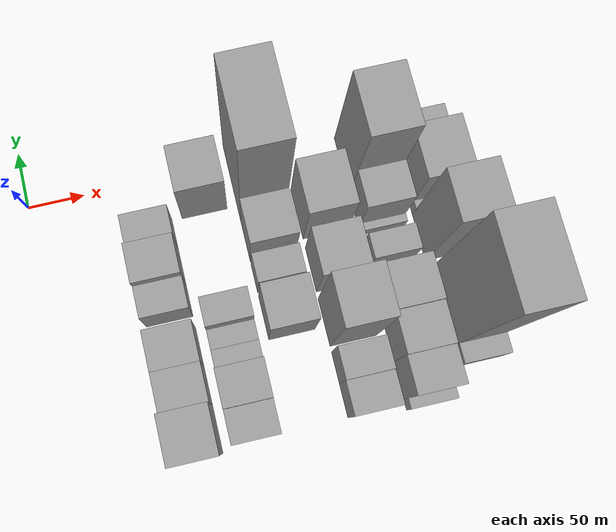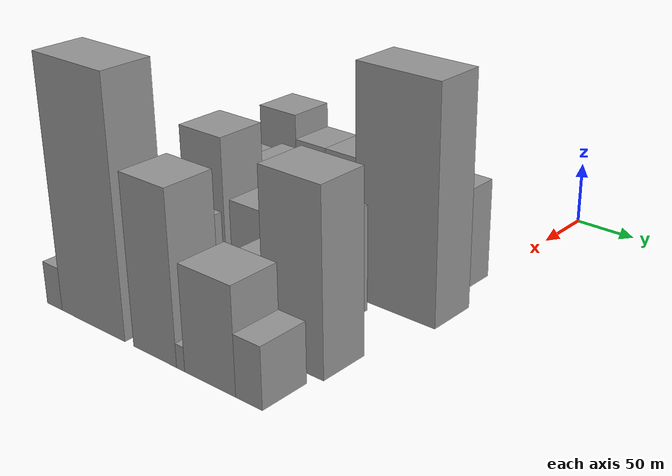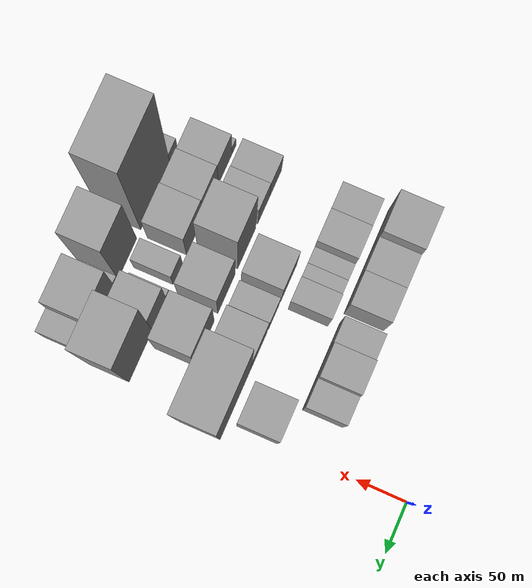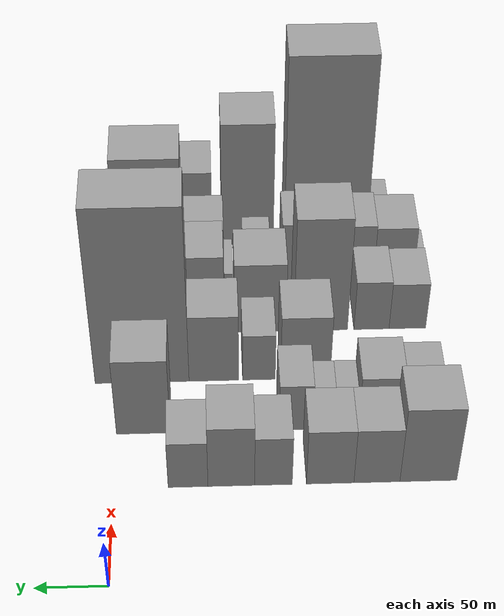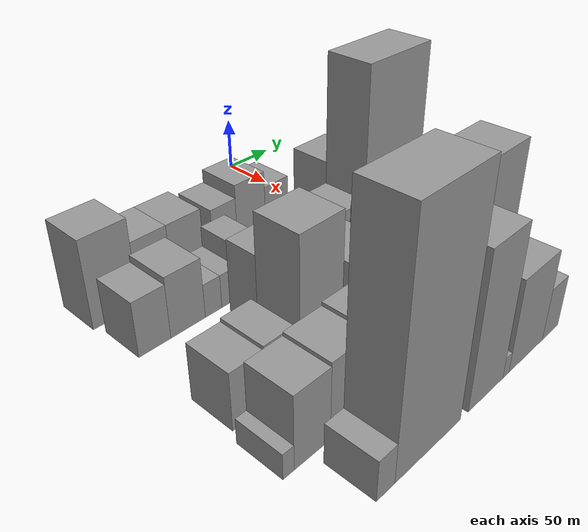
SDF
<sdf version="1.6">
 <world name="default">
  <model name="building_23">
   <static>1</static>
   <pose>100.0000 -222.5226 0 0.000000 0.000000 0.000000</pose>
   <link name="link">
    <pose>0 0 39.00 0 0 0</pose>
    <collision name="collision"><geometry><box><size>40.0000 40.3378 78.0000</size></box></geometry></collision>
    <visual name="visual">
     <cast_shadows>0</cast_shadows>
     <geometry><box><size>40.0000 40.3378 78.0000</size></box></geometry>
     <material>
      <script>
       <uri>model://grey_wall/materials/scripts</uri>
       <uri>model://grey_wall/materials/textures</uri>
       <name>vrc/grey_wall</name>
      </script>
     </material>
    </visual>
   </link>
  </model>
  <model name="building_24">
   <static>1</static>
   <pose>100.0000 -186.0903 0 0.000000 0.000000 0.000000</pose>
   <link name="link">
    <pose>0 0 28.50 0 0 0</pose>
    <collision name="collision"><geometry><box><size>40.0000 32.5268 57.0000</size></box></geometry></collision>
    <visual name="visual">
     <cast_shadows>0</cast_shadows>
     <geometry><box><size>40.0000 32.5268 57.0000</size></box></geometry>
     <material>
      <script>
       <uri>model://grey_wall/materials/scripts</uri>
       <uri>model://grey_wall/materials/textures</uri>
       <name>vrc/grey_wall</name>
      </script>
     </material>
    </visual>
   </link>
  </model>
  <model name="building_25">
   <static>1</static>
   <pose>100.0000 -153.0803 0 0.000000 0.000000 0.000000</pose>
   <link name="link">
    <pose>0 0 28.50 0 0 0</pose>
    <collision name="collision"><geometry><box><size>40.0000 33.4933 57.0000</size></box></geometry></collision>
    <visual name="visual">
     <cast_shadows>0</cast_shadows>
     <geometry><box><size>40.0000 33.4933 57.0000</size></box></geometry>
     <material>
      <script>
       <uri>model://grey_wall/materials/scripts</uri>
       <uri>model://grey_wall/materials/textures</uri>
       <name>vrc/grey_wall</name>
      </script>
     </material>
    </visual>
   </link>
  </model>
  <model name="building_26">
   <static>1</static>
   <pose>100.0000 -113.0891 0 0.000000 0.000000 0.000000</pose>
   <link name="link">
    <pose>0 0 25.50 0 0 0</pose>
    <collision name="collision"><geometry><box><size>40.0000 26.4892 51.0000</size></box></geometry></collision>
    <visual name="visual">
     <cast_shadows>0</cast_shadows>
     <geometry><box><size>40.0000 26.4892 51.0000</size></box></geometry>
     <material>
      <script>
       <uri>model://grey_wall/materials/scripts</uri>
       <uri>model://grey_wall/materials/textures</uri>
       <name>vrc/grey_wall</name>
      </script>
     </material>
    </visual>
   </link>
  </model>
  <model name="building_27">
   <static>1</static>
   <pose>100.0000 -83.3933 0 0.000000 0.000000 0.000000</pose>
   <link name="link">
    <pose>0 0 31.50 0 0 0</pose>
    <collision name="collision"><geometry><box><size>40.0000 32.9023 63.0000</size></box></geometry></collision>
    <visual name="visual">
     <cast_shadows>0</cast_shadows>
     <geometry><box><size>40.0000 32.9023 63.0000</size></box></geometry>
     <material>
      <script>
       <uri>model://grey_wall/materials/scripts</uri>
       <uri>model://grey_wall/materials/textures</uri>
       <name>vrc/grey_wall</name>
      </script>
     </material>
    </visual>
   </link>
  </model>
  <model name="building_28">
   <static>1</static>
   <pose>100.0000 -52.9506 0 0.000000 0.000000 0.000000</pose>
   <link name="link">
    <pose>0 0 24.00 0 0 0</pose>
    <collision name="collision"><geometry><box><size>40.0000 27.9831 48.0000</size></box></geometry></collision>
    <visual name="visual">
     <cast_shadows>0</cast_shadows>
     <geometry><box><size>40.0000 27.9831 48.0000</size></box></geometry>
     <material>
      <script>
       <uri>model://grey_wall/materials/scripts</uri>
       <uri>model://grey_wall/materials/textures</uri>
       <name>vrc/grey_wall</name>
      </script>
     </material>
    </visual>
   </link>
  </model>
  <model name="building_67">
   <static>1</static>
   <pose>149.0000 -223.7566 0 0.000000 0.000000 0.000000</pose>
   <link name="link">
    <pose>0 0 24.00 0 0 0</pose>
    <collision name="collision"><geometry><box><size>40.0000 28.0951 48.0000</size></box></geometry></collision>
    <visual name="visual">
     <cast_shadows>0</cast_shadows>
     <geometry><box><size>40.0000 28.0951 48.0000</size></box></geometry>
     <material>
      <script>
       <uri>model://grey_wall/materials/scripts</uri>
       <uri>model://grey_wall/materials/textures</uri>
       <name>vrc/grey_wall</name>
      </script>
     </material>
    </visual>
   </link>
  </model>
  <model name="building_68">
   <static>1</static>
   <pose>149.0000 -193.5233 0 0.000000 0.000000 0.000000</pose>
   <link name="link">
    <pose>0 0 27.00 0 0 0</pose>
    <collision name="collision"><geometry><box><size>40.0000 32.3714 54.0000</size></box></geometry></collision>
    <visual name="visual">
     <cast_shadows>0</cast_shadows>
     <geometry><box><size>40.0000 32.3714 54.0000</size></box></geometry>
     <material>
      <script>
       <uri>model://grey_wall/materials/scripts</uri>
       <uri>model://grey_wall/materials/textures</uri>
       <name>vrc/grey_wall</name>
      </script>
     </material>
    </visual>
   </link>
  </model>
  <model name="building_69">
   <static>1</static>
   <pose>149.0000 -169.1457 0 0.000000 0.000000 0.000000</pose>
   <link name="link">
    <pose>0 0 15.00 0 0 0</pose>
    <collision name="collision"><geometry><box><size>40.0000 16.3839 30.0000</size></box></geometry></collision>
    <visual name="visual">
     <cast_shadows>0</cast_shadows>
     <geometry><box><size>40.0000 16.3839 30.0000</size></box></geometry>
     <material>
      <script>
       <uri>model://grey_wall/materials/scripts</uri>
       <uri>model://grey_wall/materials/textures</uri>
       <name>vrc/grey_wall</name>
      </script>
     </material>
    </visual>
   </link>
  </model>
  <model name="building_70">
   <static>1</static>
   <pose>149.0000 -152.4753 0 0.000000 0.000000 0.000000</pose>
   <link name="link">
    <pose>0 0 15.00 0 0 0</pose>
    <collision name="collision"><geometry><box><size>40.0000 16.9567 30.0000</size></box></geometry></collision>
    <visual name="visual">
     <cast_shadows>0</cast_shadows>
     <geometry><box><size>40.0000 16.9567 30.0000</size></box></geometry>
     <material>
      <script>
       <uri>model://grey_wall/materials/scripts</uri>
       <uri>model://grey_wall/materials/textures</uri>
       <name>vrc/grey_wall</name>
      </script>
     </material>
    </visual>
   </link>
  </model>
  <model name="building_71">
   <static>1</static>
   <pose>149.0000 -131.6888 0 0.000000 0.000000 0.000000</pose>
   <link name="link">
    <pose>0 0 24.00 0 0 0</pose>
    <collision name="collision"><geometry><box><size>40.0000 24.6163 48.0000</size></box></geometry></collision>
    <visual name="visual">
     <cast_shadows>0</cast_shadows>
     <geometry><box><size>40.0000 24.6163 48.0000</size></box></geometry>
     <material>
      <script>
       <uri>model://grey_wall/materials/scripts</uri>
       <uri>model://grey_wall/materials/textures</uri>
       <name>vrc/grey_wall</name>
      </script>
     </material>
    </visual>
   </link>
  </model>
  <model name="building_72">
   <static>1</static>
   <pose>149.0000 -20.7572 0 0.000000 0.000000 0.000000</pose>
   <link name="link">
    <pose>0 0 39.00 0 0 0</pose>
    <collision name="collision"><geometry><box><size>40.0000 39.0823 78.0000</size></box></geometry></collision>
    <visual name="visual">
     <cast_shadows>0</cast_shadows>
     <geometry><box><size>40.0000 39.0823 78.0000</size></box></geometry>
     <material>
      <script>
       <uri>model://grey_wall/materials/scripts</uri>
       <uri>model://grey_wall/materials/textures</uri>
       <name>vrc/grey_wall</name>
      </script>
     </material>
    </visual>
   </link>
  </model>
  <model name="building_114">
   <static>1</static>
   <pose>198.0000 -141.5243 0 0.000000 0.000000 0.000000</pose>
   <link name="link">
    <pose>0 0 33.00 0 0 0</pose>
    <collision name="collision"><geometry><box><size>40.0000 37.3771 66.0000</size></box></geometry></collision>
    <visual name="visual">
     <cast_shadows>0</cast_shadows>
     <geometry><box><size>40.0000 37.3771 66.0000</size></box></geometry>
     <material>
      <script>
       <uri>model://grey_wall/materials/scripts</uri>
       <uri>model://grey_wall/materials/textures</uri>
       <name>vrc/grey_wall</name>
      </script>
     </material>
    </visual>
   </link>
  </model>
  <model name="building_115">
   <static>1</static>
   <pose>198.0000 -106.5794 0 0.000000 0.000000 0.000000</pose>
   <link name="link">
    <pose>0 0 24.00 0 0 0</pose>
    <collision name="collision"><geometry><box><size>40.0000 24.5127 48.0000</size></box></geometry></collision>
    <visual name="visual">
     <cast_shadows>0</cast_shadows>
     <geometry><box><size>40.0000 24.5127 48.0000</size></box></geometry>
     <material>
      <script>
       <uri>model://grey_wall/materials/scripts</uri>
       <uri>model://grey_wall/materials/textures</uri>
       <name>vrc/grey_wall</name>
      </script>
     </material>
    </visual>
   </link>
  </model>
  <model name="building_116">
   <static>1</static>
   <pose>198.0000 -72.7229 0 0.000000 0.000000 0.000000</pose>
   <link name="link">
    <pose>0 0 34.50 0 0 0</pose>
    <collision name="collision"><geometry><box><size>40.0000 37.2005 69.0000</size></box></geometry></collision>
    <visual name="visual">
     <cast_shadows>0</cast_shadows>
     <geometry><box><size>40.0000 37.2005 69.0000</size></box></geometry>
     <material>
      <script>
       <uri>model://grey_wall/materials/scripts</uri>
       <uri>model://grey_wall/materials/textures</uri>
       <name>vrc/grey_wall</name>
      </script>
     </material>
    </visual>
   </link>
  </model>
  <model name="building_117">
   <static>1</static>
   <pose>198.0000 -18.9332 0 0.000000 0.000000 0.000000</pose>
   <link name="link">
    <pose>0 0 88.50 0 0 0</pose>
    <collision name="collision"><geometry><box><size>40.0000 70.3789 177.0000</size></box></geometry></collision>
    <visual name="visual">
     <cast_shadows>0</cast_shadows>
     <geometry><box><size>40.0000 70.3789 177.0000</size></box></geometry>
     <material>
      <script>
       <uri>model://grey_wall/materials/scripts</uri>
       <uri>model://grey_wall/materials/textures</uri>
       <name>vrc/grey_wall</name>
      </script>
     </material>
    </visual>
   </link>
  </model>
  <model name="building_160">
   <static>1</static>
   <pose>247.0000 -223.7564 0 0.000000 0.000000 0.000000</pose>
   <link name="link">
    <pose>0 0 24.00 0 0 0</pose>
    <collision name="collision"><geometry><box><size>40.0000 28.5506 48.0000</size></box></geometry></collision>
    <visual name="visual">
     <cast_shadows>0</cast_shadows>
     <geometry><box><size>40.0000 28.5506 48.0000</size></box></geometry>
     <material>
      <script>
       <uri>model://grey_wall/materials/scripts</uri>
       <uri>model://grey_wall/materials/textures</uri>
       <name>vrc/grey_wall</name>
      </script>
     </material>
    </visual>
   </link>
  </model>
  <model name="building_161">
   <static>1</static>
   <pose>247.0000 -195.8212 0 0.000000 0.000000 0.000000</pose>
   <link name="link">
    <pose>0 0 25.50 0 0 0</pose>
    <collision name="collision"><geometry><box><size>40.0000 27.3198 51.0000</size></box></geometry></collision>
    <visual name="visual">
     <cast_shadows>0</cast_shadows>
     <geometry><box><size>40.0000 27.3198 51.0000</size></box></geometry>
     <material>
      <script>
       <uri>model://grey_wall/materials/scripts</uri>
       <uri>model://grey_wall/materials/textures</uri>
       <name>vrc/grey_wall</name>
      </script>
     </material>
    </visual>
   </link>
  </model>
  <model name="building_162">
   <static>1</static>
   <pose>247.0000 -156.2621 0 0.000000 0.000000 0.000000</pose>
   <link name="link">
    <pose>0 0 58.50 0 0 0</pose>
    <collision name="collision"><geometry><box><size>40.0000 41.7986 117.0000</size></box></geometry></collision>
    <visual name="visual">
     <cast_shadows>0</cast_shadows>
     <geometry><box><size>40.0000 41.7986 117.0000</size></box></geometry>
     <material>
      <script>
       <uri>model://grey_wall/materials/scripts</uri>
       <uri>model://grey_wall/materials/textures</uri>
       <name>vrc/grey_wall</name>
      </script>
     </material>
    </visual>
   </link>
  </model>
  <model name="building_163">
   <static>1</static>
   <pose>247.0000 -109.4902 0 0.000000 0.000000 0.000000</pose>
   <link name="link">
    <pose>0 0 36.00 0 0 0</pose>
    <collision name="collision"><geometry><box><size>40.0000 39.7451 72.0000</size></box></geometry></collision>
    <visual name="visual">
     <cast_shadows>0</cast_shadows>
     <geometry><box><size>40.0000 39.7451 72.0000</size></box></geometry>
     <material>
      <script>
       <uri>model://grey_wall/materials/scripts</uri>
       <uri>model://grey_wall/materials/textures</uri>
       <name>vrc/grey_wall</name>
      </script>
     </material>
    </visual>
   </link>
  </model>
  <model name="building_164">
   <static>1</static>
   <pose>247.0000 -58.9321 0 0.000000 0.000000 0.000000</pose>
   <link name="link">
    <pose>0 0 40.50 0 0 0</pose>
    <collision name="collision"><geometry><box><size>40.0000 45.3710 81.0000</size></box></geometry></collision>
    <visual name="visual">
     <cast_shadows>0</cast_shadows>
     <geometry><box><size>40.0000 45.3710 81.0000</size></box></geometry>
     <material>
      <script>
       <uri>model://grey_wall/materials/scripts</uri>
       <uri>model://grey_wall/materials/textures</uri>
       <name>vrc/grey_wall</name>
      </script>
     </material>
    </visual>
   </link>
  </model>
  <model name="building_207">
   <static>1</static>
   <pose>296.0000 -238.2294 0 0.000000 0.000000 0.000000</pose>
   <link name="link">
    <pose>0 0 10.50 0 0 0</pose>
    <collision name="collision"><geometry><box><size>40.0000 9.3906 21.0000</size></box></geometry></collision>
    <visual name="visual">
     <cast_shadows>0</cast_shadows>
     <geometry><box><size>40.0000 9.3906 21.0000</size></box></geometry>
     <material>
      <script>
       <uri>model://grey_wall/materials/scripts</uri>
       <uri>model://grey_wall/materials/textures</uri>
       <name>vrc/grey_wall</name>
      </script>
     </material>
    </visual>
   </link>
  </model>
  <model name="building_208">
   <static>1</static>
   <pose>296.0000 -217.5883 0 0.000000 0.000000 0.000000</pose>
   <link name="link">
    <pose>0 0 30.00 0 0 0</pose>
    <collision name="collision"><geometry><box><size>40.0000 31.8917 60.0000</size></box></geometry></collision>
    <visual name="visual">
     <cast_shadows>0</cast_shadows>
     <geometry><box><size>40.0000 31.8917 60.0000</size></box></geometry>
     <material>
      <script>
       <uri>model://grey_wall/materials/scripts</uri>
       <uri>model://grey_wall/materials/textures</uri>
       <name>vrc/grey_wall</name>
      </script>
     </material>
    </visual>
   </link>
  </model>
  <model name="building_209">
   <static>1</static>
   <pose>296.0000 -184.1493 0 0.000000 0.000000 0.000000</pose>
   <link name="link">
    <pose>0 0 31.50 0 0 0</pose>
    <collision name="collision"><geometry><box><size>40.0000 34.9862 63.0000</size></box></geometry></collision>
    <visual name="visual">
     <cast_shadows>0</cast_shadows>
     <geometry><box><size>40.0000 34.9862 63.0000</size></box></geometry>
     <material>
      <script>
       <uri>model://grey_wall/materials/scripts</uri>
       <uri>model://grey_wall/materials/textures</uri>
       <name>vrc/grey_wall</name>
      </script>
     </material>
    </visual>
   </link>
  </model>
  <model name="building_210">
   <static>1</static>
   <pose>296.0000 -147.4886 0 0.000000 0.000000 0.000000</pose>
   <link name="link">
    <pose>0 0 33.00 0 0 0</pose>
    <collision name="collision"><geometry><box><size>40.0000 38.3351 66.0000</size></box></geometry></collision>
    <visual name="visual">
     <cast_shadows>0</cast_shadows>
     <geometry><box><size>40.0000 38.3351 66.0000</size></box></geometry>
     <material>
      <script>
       <uri>model://grey_wall/materials/scripts</uri>
       <uri>model://grey_wall/materials/textures</uri>
       <name>vrc/grey_wall</name>
      </script>
     </material>
    </visual>
   </link>
  </model>
  <model name="building_211">
   <static>1</static>
   <pose>296.0000 -108.4655 0 0.000000 0.000000 0.000000</pose>
   <link name="link">
    <pose>0 0 19.50 0 0 0</pose>
    <collision name="collision"><geometry><box><size>40.0000 21.7110 39.0000</size></box></geometry></collision>
    <visual name="visual">
     <cast_shadows>0</cast_shadows>
     <geometry><box><size>40.0000 21.7110 39.0000</size></box></geometry>
     <material>
      <script>
       <uri>model://grey_wall/materials/scripts</uri>
       <uri>model://grey_wall/materials/textures</uri>
       <name>vrc/grey_wall</name>
      </script>
     </material>
    </visual>
   </link>
  </model>
  <model name="building_212">
   <static>1</static>
   <pose>296.0000 -86.0729 0 0.000000 0.000000 0.000000</pose>
   <link name="link">
    <pose>0 0 7.50 0 0 0</pose>
    <collision name="collision"><geometry><box><size>40.0000 7.0743 15.0000</size></box></geometry></collision>
    <visual name="visual">
     <cast_shadows>0</cast_shadows>
     <geometry><box><size>40.0000 7.0743 15.0000</size></box></geometry>
     <material>
      <script>
       <uri>model://grey_wall/materials/scripts</uri>
       <uri>model://grey_wall/materials/textures</uri>
       <name>vrc/grey_wall</name>
      </script>
     </material>
    </visual>
   </link>
  </model>
  <model name="building_213">
   <static>1</static>
   <pose>296.0000 -66.5251 0 0.000000 0.000000 0.000000</pose>
   <link name="link">
    <pose>0 0 31.50 0 0 0</pose>
    <collision name="collision"><geometry><box><size>40.0000 32.0213 63.0000</size></box></geometry></collision>
    <visual name="visual">
     <cast_shadows>0</cast_shadows>
     <geometry><box><size>40.0000 32.0213 63.0000</size></box></geometry>
     <material>
      <script>
       <uri>model://grey_wall/materials/scripts</uri>
       <uri>model://grey_wall/materials/textures</uri>
       <name>vrc/grey_wall</name>
      </script>
     </material>
    </visual>
   </link>
  </model>
  <model name="building_214">
   <static>1</static>
   <pose>296.0000 -24.4264 0 0.000000 0.000000 0.000000</pose>
   <link name="link">
    <pose>0 0 67.50 0 0 0</pose>
    <collision name="collision"><geometry><box><size>40.0000 52.1761 135.0000</size></box></geometry></collision>
    <visual name="visual">
     <cast_shadows>0</cast_shadows>
     <geometry><box><size>40.0000 52.1761 135.0000</size></box></geometry>
     <material>
      <script>
       <uri>model://grey_wall/materials/scripts</uri>
       <uri>model://grey_wall/materials/textures</uri>
       <name>vrc/grey_wall</name>
      </script>
     </material>
    </visual>
   </link>
  </model>
  <model name="building_255">
   <static>1</static>
   <pose>345.0000 -209.1612 0 0.000000 0.000000 0.000000</pose>
   <link name="link">
    <pose>0 0 16.50 0 0 0</pose>
    <collision name="collision"><geometry><box><size>40.0000 16.9104 33.0000</size></box></geometry></collision>
    <visual name="visual">
     <cast_shadows>0</cast_shadows>
     <geometry><box><size>40.0000 16.9104 33.0000</size></box></geometry>
     <material>
      <script>
       <uri>model://grey_wall/materials/scripts</uri>
       <uri>model://grey_wall/materials/textures</uri>
       <name>vrc/grey_wall</name>
      </script>
     </material>
    </visual>
   </link>
  </model>
  <model name="building_256">
   <static>1</static>
   <pose>345.0000 -166.8159 0 0.000000 0.000000 0.000000</pose>
   <link name="link">
    <pose>0 0 94.50 0 0 0</pose>
    <collision name="collision"><geometry><box><size>40.0000 67.7801 189.0000</size></box></geometry></collision>
    <visual name="visual">
     <cast_shadows>0</cast_shadows>
     <geometry><box><size>40.0000 67.7801 189.0000</size></box></geometry>
     <material>
      <script>
       <uri>model://grey_wall/materials/scripts</uri>
       <uri>model://grey_wall/materials/textures</uri>
       <name>vrc/grey_wall</name>
      </script>
     </material>
    </visual>
   </link>
  </model>
  <model name="building_257">
   <static>1</static>
   <pose>345.0000 -102.8293 0 0.000000 0.000000 0.000000</pose>
   <link name="link">
    <pose>0 0 63.00 0 0 0</pose>
    <collision name="collision"><geometry><box><size>40.0000 42.1931 126.0000</size></box></geometry></collision>
    <visual name="visual">
     <cast_shadows>0</cast_shadows>
     <geometry><box><size>40.0000 42.1931 126.0000</size></box></geometry>
     <material>
      <script>
       <uri>model://grey_wall/materials/scripts</uri>
       <uri>model://grey_wall/materials/textures</uri>
       <name>vrc/grey_wall</name>
      </script>
     </material>
    </visual>
   </link>
  </model>
  <model name="building_258">
   <static>1</static>
   <pose>345.0000 -77.8746 0 0.000000 0.000000 0.000000</pose>
   <link name="link">
    <pose>0 0 9.00 0 0 0</pose>
    <collision name="collision"><geometry><box><size>40.0000 7.7164 18.0000</size></box></geometry></collision>
    <visual name="visual">
     <cast_shadows>0</cast_shadows>
     <geometry><box><size>40.0000 7.7164 18.0000</size></box></geometry>
     <material>
      <script>
       <uri>model://grey_wall/materials/scripts</uri>
       <uri>model://grey_wall/materials/textures</uri>
       <name>vrc/grey_wall</name>
      </script>
     </material>
    </visual>
   </link>
  </model>
  <model name="building_259">
   <static>1</static>
   <pose>345.0000 -50.8318 0 0.000000 0.000000 0.000000</pose>
   <link name="link">
    <pose>0 0 39.00 0 0 0</pose>
    <collision name="collision"><geometry><box><size>40.0000 46.3693 78.0000</size></box></geometry></collision>
    <visual name="visual">
     <cast_shadows>0</cast_shadows>
     <geometry><box><size>40.0000 46.3693 78.0000</size></box></geometry>
     <material>
      <script>
       <uri>model://grey_wall/materials/scripts</uri>
       <uri>model://grey_wall/materials/textures</uri>
       <name>vrc/grey_wall</name>
      </script>
     </material>
    </visual>
   </link>
  </model>
  <model name="building_260">
   <static>1</static>
   <pose>345.0000 -16.1282 0 0.000000 0.000000 0.000000</pose>
   <link name="link">
    <pose>0 0 22.50 0 0 0</pose>
    <collision name="collision"><geometry><box><size>40.0000 23.0378 45.0000</size></box></geometry></collision>
    <visual name="visual">
     <cast_shadows>0</cast_shadows>
     <geometry><box><size>40.0000 23.0378 45.0000</size></box></geometry>
     <material>
      <script>
       <uri>model://grey_wall/materials/scripts</uri>
       <uri>model://grey_wall/materials/textures</uri>
       <name>vrc/grey_wall</name>
      </script>
     </material>
    </visual>
   </link>
  </model>
 </world>
</sdf>
